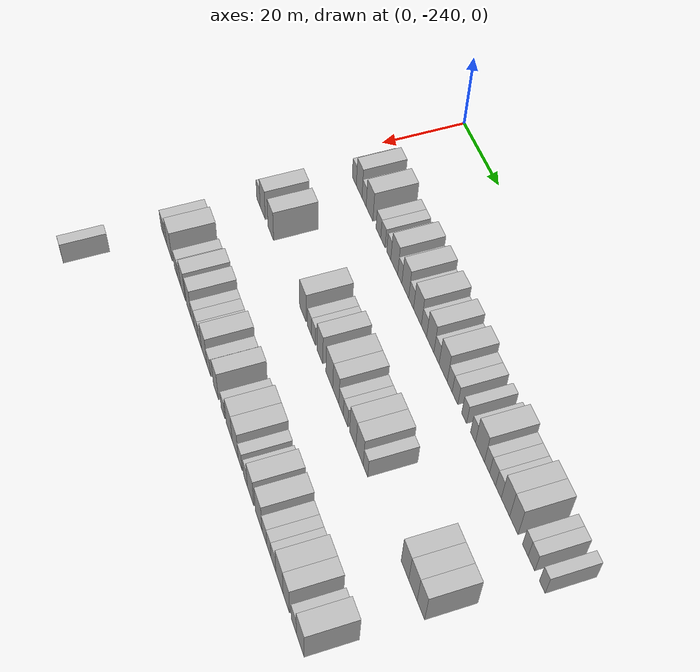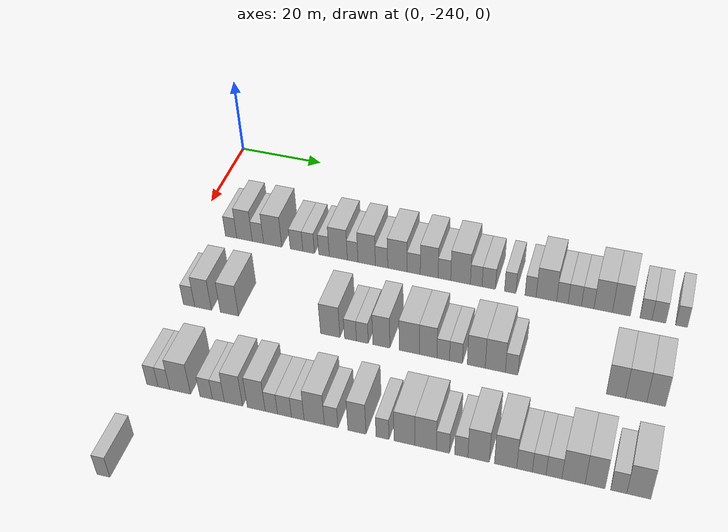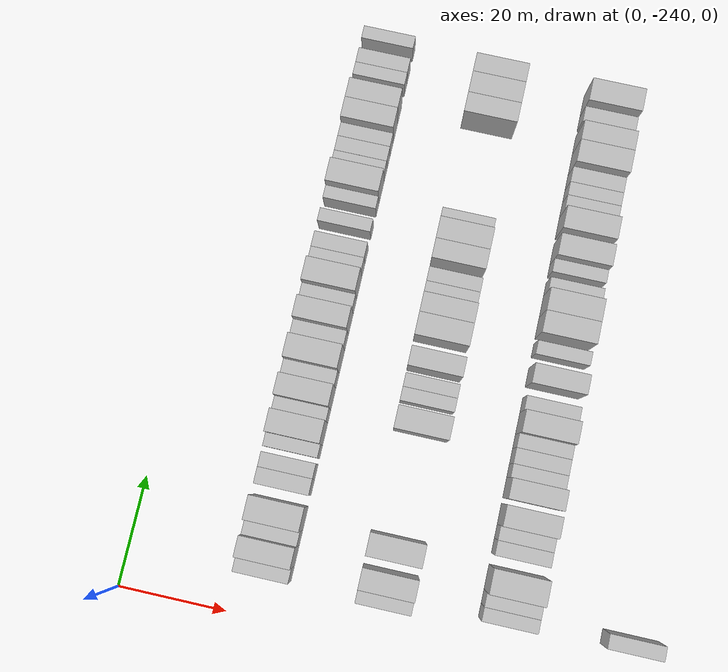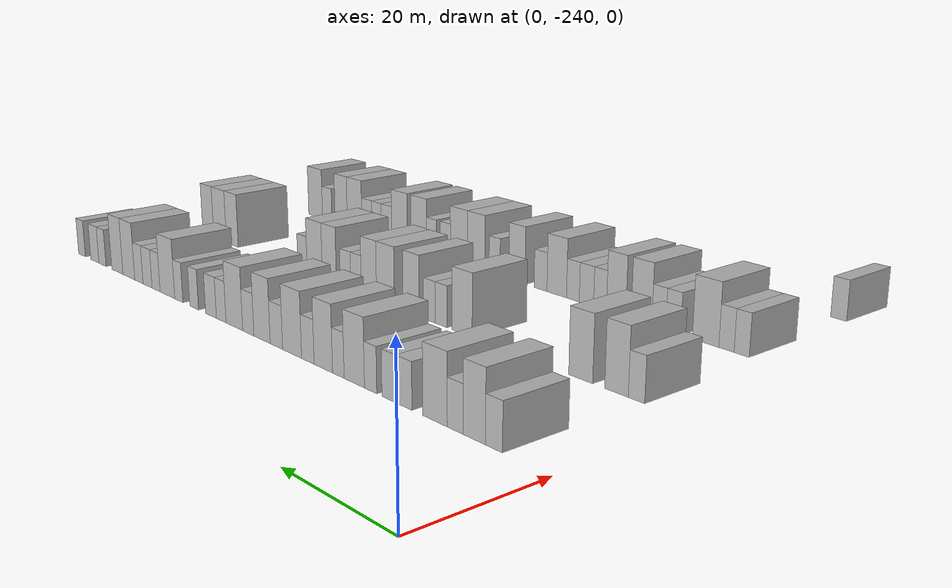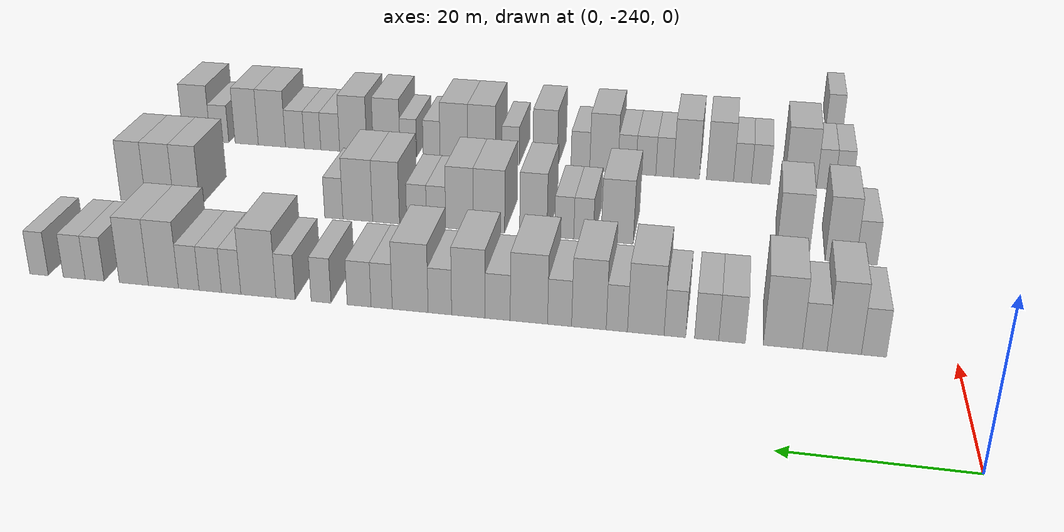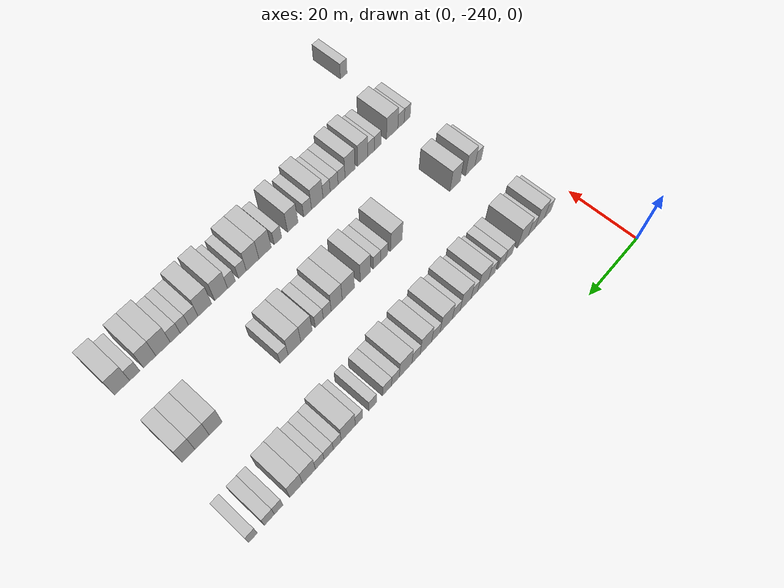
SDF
<sdf version="1.6">
 <world name="default">
  <model name="building_39">
   <static>1</static>
   <pose>25.0000 -230.9907 0 0.000000 0.000000 0.000000</pose>
   <link name="link">
    <pose>0 0 3.00 0 0 0</pose>
    <collision name="collision"><geometry><box><size>10.0000 2.7248 6.0000</size></box></geometry></collision>
    <visual name="visual">
     <cast_shadows>0</cast_shadows>
     <geometry><box><size>10.0000 2.7248 6.0000</size></box></geometry>
     <material>
      <script>
       <uri>model://HANNAS_wall/materials/scripts</uri>
       <uri>model://HANNAS_wall/materials/textures</uri>
       <name>vrc/HANNAS_wall</name>
      </script>
     </material>
    </visual>
   </link>
  </model>
  <model name="building_40">
   <static>1</static>
   <pose>25.0000 -227.7550 0 0.000000 0.000000 0.000000</pose>
   <link name="link">
    <pose>0 0 4.50 0 0 0</pose>
    <collision name="collision"><geometry><box><size>10.0000 3.7465 9.0000</size></box></geometry></collision>
    <visual name="visual">
     <cast_shadows>0</cast_shadows>
     <geometry><box><size>10.0000 3.7465 9.0000</size></box></geometry>
     <material>
      <script>
       <uri>model://HANNAS_wall/materials/scripts</uri>
       <uri>model://HANNAS_wall/materials/textures</uri>
       <name>vrc/HANNAS_wall</name>
      </script>
     </material>
    </visual>
   </link>
  </model>
  <model name="building_41">
   <static>1</static>
   <pose>25.0000 -224.5326 0 0.000000 0.000000 0.000000</pose>
   <link name="link">
    <pose>0 0 3.00 0 0 0</pose>
    <collision name="collision"><geometry><box><size>10.0000 2.6983 6.0000</size></box></geometry></collision>
    <visual name="visual">
     <cast_shadows>0</cast_shadows>
     <geometry><box><size>10.0000 2.6983 6.0000</size></box></geometry>
     <material>
      <script>
       <uri>model://HANNAS_wall/materials/scripts</uri>
       <uri>model://HANNAS_wall/materials/textures</uri>
       <name>vrc/HANNAS_wall</name>
      </script>
     </material>
    </visual>
   </link>
  </model>
  <model name="building_42">
   <static>1</static>
   <pose>25.0000 -221.0096 0 0.000000 0.000000 0.000000</pose>
   <link name="link">
    <pose>0 0 4.50 0 0 0</pose>
    <collision name="collision"><geometry><box><size>10.0000 4.3477 9.0000</size></box></geometry></collision>
    <visual name="visual">
     <cast_shadows>0</cast_shadows>
     <geometry><box><size>10.0000 4.3477 9.0000</size></box></geometry>
     <material>
      <script>
       <uri>model://HANNAS_wall/materials/scripts</uri>
       <uri>model://HANNAS_wall/materials/textures</uri>
       <name>vrc/HANNAS_wall</name>
      </script>
     </material>
    </visual>
   </link>
  </model>
  <model name="building_43">
   <static>1</static>
   <pose>25.0000 -215.3439 0 0.000000 0.000000 0.000000</pose>
   <link name="link">
    <pose>0 0 3.00 0 0 0</pose>
    <collision name="collision"><geometry><box><size>10.0000 2.9838 6.0000</size></box></geometry></collision>
    <visual name="visual">
     <cast_shadows>0</cast_shadows>
     <geometry><box><size>10.0000 2.9838 6.0000</size></box></geometry>
     <material>
      <script>
       <uri>model://HANNAS_wall/materials/scripts</uri>
       <uri>model://HANNAS_wall/materials/textures</uri>
       <name>vrc/HANNAS_wall</name>
      </script>
     </material>
    </visual>
   </link>
  </model>
  <model name="building_44">
   <static>1</static>
   <pose>25.0000 -212.4890 0 0.000000 0.000000 0.000000</pose>
   <link name="link">
    <pose>0 0 3.00 0 0 0</pose>
    <collision name="collision"><geometry><box><size>10.0000 2.7260 6.0000</size></box></geometry></collision>
    <visual name="visual">
     <cast_shadows>0</cast_shadows>
     <geometry><box><size>10.0000 2.7260 6.0000</size></box></geometry>
     <material>
      <script>
       <uri>model://HANNAS_wall/materials/scripts</uri>
       <uri>model://HANNAS_wall/materials/textures</uri>
       <name>vrc/HANNAS_wall</name>
      </script>
     </material>
    </visual>
   </link>
  </model>
  <model name="building_45">
   <static>1</static>
   <pose>25.0000 -208.8922 0 0.000000 0.000000 0.000000</pose>
   <link name="link">
    <pose>0 0 3.00 0 0 0</pose>
    <collision name="collision"><geometry><box><size>10.0000 2.4675 6.0000</size></box></geometry></collision>
    <visual name="visual">
     <cast_shadows>0</cast_shadows>
     <geometry><box><size>10.0000 2.4675 6.0000</size></box></geometry>
     <material>
      <script>
       <uri>model://HANNAS_wall/materials/scripts</uri>
       <uri>model://HANNAS_wall/materials/textures</uri>
       <name>vrc/HANNAS_wall</name>
      </script>
     </material>
    </visual>
   </link>
  </model>
  <model name="building_46">
   <static>1</static>
   <pose>25.0000 -205.5617 0 0.000000 0.000000 0.000000</pose>
   <link name="link">
    <pose>0 0 4.50 0 0 0</pose>
    <collision name="collision"><geometry><box><size>10.0000 4.1934 9.0000</size></box></geometry></collision>
    <visual name="visual">
     <cast_shadows>0</cast_shadows>
     <geometry><box><size>10.0000 4.1934 9.0000</size></box></geometry>
     <material>
      <script>
       <uri>model://HANNAS_wall/materials/scripts</uri>
       <uri>model://HANNAS_wall/materials/textures</uri>
       <name>vrc/HANNAS_wall</name>
      </script>
     </material>
    </visual>
   </link>
  </model>
  <model name="building_47">
   <static>1</static>
   <pose>25.0000 -202.2358 0 0.000000 0.000000 0.000000</pose>
   <link name="link">
    <pose>0 0 3.00 0 0 0</pose>
    <collision name="collision"><geometry><box><size>10.0000 2.4584 6.0000</size></box></geometry></collision>
    <visual name="visual">
     <cast_shadows>0</cast_shadows>
     <geometry><box><size>10.0000 2.4584 6.0000</size></box></geometry>
     <material>
      <script>
       <uri>model://HANNAS_wall/materials/scripts</uri>
       <uri>model://HANNAS_wall/materials/textures</uri>
       <name>vrc/HANNAS_wall</name>
      </script>
     </material>
    </visual>
   </link>
  </model>
  <model name="building_48">
   <static>1</static>
   <pose>25.0000 -198.9957 0 0.000000 0.000000 0.000000</pose>
   <link name="link">
    <pose>0 0 4.50 0 0 0</pose>
    <collision name="collision"><geometry><box><size>10.0000 4.0219 9.0000</size></box></geometry></collision>
    <visual name="visual">
     <cast_shadows>0</cast_shadows>
     <geometry><box><size>10.0000 4.0219 9.0000</size></box></geometry>
     <material>
      <script>
       <uri>model://HANNAS_wall/materials/scripts</uri>
       <uri>model://HANNAS_wall/materials/textures</uri>
       <name>vrc/HANNAS_wall</name>
      </script>
     </material>
    </visual>
   </link>
  </model>
  <model name="building_49">
   <static>1</static>
   <pose>25.0000 -195.5774 0 0.000000 0.000000 0.000000</pose>
   <link name="link">
    <pose>0 0 3.00 0 0 0</pose>
    <collision name="collision"><geometry><box><size>10.0000 2.8146 6.0000</size></box></geometry></collision>
    <visual name="visual">
     <cast_shadows>0</cast_shadows>
     <geometry><box><size>10.0000 2.8146 6.0000</size></box></geometry>
     <material>
      <script>
       <uri>model://HANNAS_wall/materials/scripts</uri>
       <uri>model://HANNAS_wall/materials/textures</uri>
       <name>vrc/HANNAS_wall</name>
      </script>
     </material>
    </visual>
   </link>
  </model>
  <model name="building_50">
   <static>1</static>
   <pose>25.0000 -191.9645 0 0.000000 0.000000 0.000000</pose>
   <link name="link">
    <pose>0 0 4.50 0 0 0</pose>
    <collision name="collision"><geometry><box><size>10.0000 4.4112 9.0000</size></box></geometry></collision>
    <visual name="visual">
     <cast_shadows>0</cast_shadows>
     <geometry><box><size>10.0000 4.4112 9.0000</size></box></geometry>
     <material>
      <script>
       <uri>model://HANNAS_wall/materials/scripts</uri>
       <uri>model://HANNAS_wall/materials/textures</uri>
       <name>vrc/HANNAS_wall</name>
      </script>
     </material>
    </visual>
   </link>
  </model>
  <model name="building_51">
   <static>1</static>
   <pose>25.0000 -188.2748 0 0.000000 0.000000 0.000000</pose>
   <link name="link">
    <pose>0 0 3.00 0 0 0</pose>
    <collision name="collision"><geometry><box><size>10.0000 2.9683 6.0000</size></box></geometry></collision>
    <visual name="visual">
     <cast_shadows>0</cast_shadows>
     <geometry><box><size>10.0000 2.9683 6.0000</size></box></geometry>
     <material>
      <script>
       <uri>model://HANNAS_wall/materials/scripts</uri>
       <uri>model://HANNAS_wall/materials/textures</uri>
       <name>vrc/HANNAS_wall</name>
      </script>
     </material>
    </visual>
   </link>
  </model>
  <model name="building_52">
   <static>1</static>
   <pose>25.0000 -184.7774 0 0.000000 0.000000 0.000000</pose>
   <link name="link">
    <pose>0 0 4.50 0 0 0</pose>
    <collision name="collision"><geometry><box><size>10.0000 4.0264 9.0000</size></box></geometry></collision>
    <visual name="visual">
     <cast_shadows>0</cast_shadows>
     <geometry><box><size>10.0000 4.0264 9.0000</size></box></geometry>
     <material>
      <script>
       <uri>model://HANNAS_wall/materials/scripts</uri>
       <uri>model://HANNAS_wall/materials/textures</uri>
       <name>vrc/HANNAS_wall</name>
      </script>
     </material>
    </visual>
   </link>
  </model>
  <model name="building_53">
   <static>1</static>
   <pose>25.0000 -181.3455 0 0.000000 0.000000 0.000000</pose>
   <link name="link">
    <pose>0 0 3.00 0 0 0</pose>
    <collision name="collision"><geometry><box><size>10.0000 2.8375 6.0000</size></box></geometry></collision>
    <visual name="visual">
     <cast_shadows>0</cast_shadows>
     <geometry><box><size>10.0000 2.8375 6.0000</size></box></geometry>
     <material>
      <script>
       <uri>model://HANNAS_wall/materials/scripts</uri>
       <uri>model://HANNAS_wall/materials/textures</uri>
       <name>vrc/HANNAS_wall</name>
      </script>
     </material>
    </visual>
   </link>
  </model>
  <model name="building_54">
   <static>1</static>
   <pose>25.0000 -177.7456 0 0.000000 0.000000 0.000000</pose>
   <link name="link">
    <pose>0 0 4.50 0 0 0</pose>
    <collision name="collision"><geometry><box><size>10.0000 4.3623 9.0000</size></box></geometry></collision>
    <visual name="visual">
     <cast_shadows>0</cast_shadows>
     <geometry><box><size>10.0000 4.3623 9.0000</size></box></geometry>
     <material>
      <script>
       <uri>model://HANNAS_wall/materials/scripts</uri>
       <uri>model://HANNAS_wall/materials/textures</uri>
       <name>vrc/HANNAS_wall</name>
      </script>
     </material>
    </visual>
   </link>
  </model>
  <model name="building_55">
   <static>1</static>
   <pose>25.0000 -174.2696 0 0.000000 0.000000 0.000000</pose>
   <link name="link">
    <pose>0 0 3.00 0 0 0</pose>
    <collision name="collision"><geometry><box><size>10.0000 2.5898 6.0000</size></box></geometry></collision>
    <visual name="visual">
     <cast_shadows>0</cast_shadows>
     <geometry><box><size>10.0000 2.5898 6.0000</size></box></geometry>
     <material>
      <script>
       <uri>model://HANNAS_wall/materials/scripts</uri>
       <uri>model://HANNAS_wall/materials/textures</uri>
       <name>vrc/HANNAS_wall</name>
      </script>
     </material>
    </visual>
   </link>
  </model>
  <model name="building_56">
   <static>1</static>
   <pose>25.0000 -171.4999 0 0.000000 0.000000 0.000000</pose>
   <link name="link">
    <pose>0 0 3.00 0 0 0</pose>
    <collision name="collision"><geometry><box><size>10.0000 2.9495 6.0000</size></box></geometry></collision>
    <visual name="visual">
     <cast_shadows>0</cast_shadows>
     <geometry><box><size>10.0000 2.9495 6.0000</size></box></geometry>
     <material>
      <script>
       <uri>model://HANNAS_wall/materials/scripts</uri>
       <uri>model://HANNAS_wall/materials/textures</uri>
       <name>vrc/HANNAS_wall</name>
      </script>
     </material>
    </visual>
   </link>
  </model>
  <model name="building_57">
   <static>1</static>
   <pose>25.0000 -166.7829 0 0.000000 0.000000 0.000000</pose>
   <link name="link">
    <pose>0 0 3.00 0 0 0</pose>
    <collision name="collision"><geometry><box><size>10.0000 2.4845 6.0000</size></box></geometry></collision>
    <visual name="visual">
     <cast_shadows>0</cast_shadows>
     <geometry><box><size>10.0000 2.4845 6.0000</size></box></geometry>
     <material>
      <script>
       <uri>model://HANNAS_wall/materials/scripts</uri>
       <uri>model://HANNAS_wall/materials/textures</uri>
       <name>vrc/HANNAS_wall</name>
      </script>
     </material>
    </visual>
   </link>
  </model>
  <model name="building_58">
   <static>1</static>
   <pose>25.0000 -162.3338 0 0.000000 0.000000 0.000000</pose>
   <link name="link">
    <pose>0 0 3.00 0 0 0</pose>
    <collision name="collision"><geometry><box><size>10.0000 2.4136 6.0000</size></box></geometry></collision>
    <visual name="visual">
     <cast_shadows>0</cast_shadows>
     <geometry><box><size>10.0000 2.4136 6.0000</size></box></geometry>
     <material>
      <script>
       <uri>model://HANNAS_wall/materials/scripts</uri>
       <uri>model://HANNAS_wall/materials/textures</uri>
       <name>vrc/HANNAS_wall</name>
      </script>
     </material>
    </visual>
   </link>
  </model>
  <model name="building_59">
   <static>1</static>
   <pose>25.0000 -158.9066 0 0.000000 0.000000 0.000000</pose>
   <link name="link">
    <pose>0 0 4.50 0 0 0</pose>
    <collision name="collision"><geometry><box><size>10.0000 4.4409 9.0000</size></box></geometry></collision>
    <visual name="visual">
     <cast_shadows>0</cast_shadows>
     <geometry><box><size>10.0000 4.4409 9.0000</size></box></geometry>
     <material>
      <script>
       <uri>model://HANNAS_wall/materials/scripts</uri>
       <uri>model://HANNAS_wall/materials/textures</uri>
       <name>vrc/HANNAS_wall</name>
      </script>
     </material>
    </visual>
   </link>
  </model>
  <model name="building_60">
   <static>1</static>
   <pose>25.0000 -155.4463 0 0.000000 0.000000 0.000000</pose>
   <link name="link">
    <pose>0 0 3.00 0 0 0</pose>
    <collision name="collision"><geometry><box><size>10.0000 2.4797 6.0000</size></box></geometry></collision>
    <visual name="visual">
     <cast_shadows>0</cast_shadows>
     <geometry><box><size>10.0000 2.4797 6.0000</size></box></geometry>
     <material>
      <script>
       <uri>model://HANNAS_wall/materials/scripts</uri>
       <uri>model://HANNAS_wall/materials/textures</uri>
       <name>vrc/HANNAS_wall</name>
      </script>
     </material>
    </visual>
   </link>
  </model>
  <model name="building_61">
   <static>1</static>
   <pose>25.0000 -152.7761 0 0.000000 0.000000 0.000000</pose>
   <link name="link">
    <pose>0 0 3.00 0 0 0</pose>
    <collision name="collision"><geometry><box><size>10.0000 2.8606 6.0000</size></box></geometry></collision>
    <visual name="visual">
     <cast_shadows>0</cast_shadows>
     <geometry><box><size>10.0000 2.8606 6.0000</size></box></geometry>
     <material>
      <script>
       <uri>model://HANNAS_wall/materials/scripts</uri>
       <uri>model://HANNAS_wall/materials/textures</uri>
       <name>vrc/HANNAS_wall</name>
      </script>
     </material>
    </visual>
   </link>
  </model>
  <model name="building_62">
   <static>1</static>
   <pose>25.0000 -150.0141 0 0.000000 0.000000 0.000000</pose>
   <link name="link">
    <pose>0 0 3.00 0 0 0</pose>
    <collision name="collision"><geometry><box><size>10.0000 2.6635 6.0000</size></box></geometry></collision>
    <visual name="visual">
     <cast_shadows>0</cast_shadows>
     <geometry><box><size>10.0000 2.6635 6.0000</size></box></geometry>
     <material>
      <script>
       <uri>model://HANNAS_wall/materials/scripts</uri>
       <uri>model://HANNAS_wall/materials/textures</uri>
       <name>vrc/HANNAS_wall</name>
      </script>
     </material>
    </visual>
   </link>
  </model>
  <model name="building_63">
   <static>1</static>
   <pose>25.0000 -146.7242 0 0.000000 0.000000 0.000000</pose>
   <link name="link">
    <pose>0 0 4.50 0 0 0</pose>
    <collision name="collision"><geometry><box><size>10.0000 3.9162 9.0000</size></box></geometry></collision>
    <visual name="visual">
     <cast_shadows>0</cast_shadows>
     <geometry><box><size>10.0000 3.9162 9.0000</size></box></geometry>
     <material>
      <script>
       <uri>model://HANNAS_wall/materials/scripts</uri>
       <uri>model://HANNAS_wall/materials/textures</uri>
       <name>vrc/HANNAS_wall</name>
      </script>
     </material>
    </visual>
   </link>
  </model>
  <model name="building_64">
   <static>1</static>
   <pose>25.0000 -142.8677 0 0.000000 0.000000 0.000000</pose>
   <link name="link">
    <pose>0 0 4.50 0 0 0</pose>
    <collision name="collision"><geometry><box><size>10.0000 3.7969 9.0000</size></box></geometry></collision>
    <visual name="visual">
     <cast_shadows>0</cast_shadows>
     <geometry><box><size>10.0000 3.7969 9.0000</size></box></geometry>
     <material>
      <script>
       <uri>model://HANNAS_wall/materials/scripts</uri>
       <uri>model://HANNAS_wall/materials/textures</uri>
       <name>vrc/HANNAS_wall</name>
      </script>
     </material>
    </visual>
   </link>
  </model>
  <model name="building_65">
   <static>1</static>
   <pose>25.0000 -137.7147 0 0.000000 0.000000 0.000000</pose>
   <link name="link">
    <pose>0 0 3.00 0 0 0</pose>
    <collision name="collision"><geometry><box><size>10.0000 2.5091 6.0000</size></box></geometry></collision>
    <visual name="visual">
     <cast_shadows>0</cast_shadows>
     <geometry><box><size>10.0000 2.5091 6.0000</size></box></geometry>
     <material>
      <script>
       <uri>model://HANNAS_wall/materials/scripts</uri>
       <uri>model://HANNAS_wall/materials/textures</uri>
       <name>vrc/HANNAS_wall</name>
      </script>
     </material>
    </visual>
   </link>
  </model>
  <model name="building_66">
   <static>1</static>
   <pose>25.0000 -135.0044 0 0.000000 0.000000 0.000000</pose>
   <link name="link">
    <pose>0 0 3.00 0 0 0</pose>
    <collision name="collision"><geometry><box><size>10.0000 2.9115 6.0000</size></box></geometry></collision>
    <visual name="visual">
     <cast_shadows>0</cast_shadows>
     <geometry><box><size>10.0000 2.9115 6.0000</size></box></geometry>
     <material>
      <script>
       <uri>model://HANNAS_wall/materials/scripts</uri>
       <uri>model://HANNAS_wall/materials/textures</uri>
       <name>vrc/HANNAS_wall</name>
      </script>
     </material>
    </visual>
   </link>
  </model>
  <model name="building_67">
   <static>1</static>
   <pose>25.0000 -130.3098 0 0.000000 0.000000 0.000000</pose>
   <link name="link">
    <pose>0 0 3.00 0 0 0</pose>
    <collision name="collision"><geometry><box><size>10.0000 2.4779 6.0000</size></box></geometry></collision>
    <visual name="visual">
     <cast_shadows>0</cast_shadows>
     <geometry><box><size>10.0000 2.4779 6.0000</size></box></geometry>
     <material>
      <script>
       <uri>model://HANNAS_wall/materials/scripts</uri>
       <uri>model://HANNAS_wall/materials/textures</uri>
       <name>vrc/HANNAS_wall</name>
      </script>
     </material>
    </visual>
   </link>
  </model>
  <model name="building_217">
   <static>1</static>
   <pose>47.0000 -231.5936 0 0.000000 0.000000 0.000000</pose>
   <link name="link">
    <pose>0 0 3.00 0 0 0</pose>
    <collision name="collision"><geometry><box><size>10.0000 2.5942 6.0000</size></box></geometry></collision>
    <visual name="visual">
     <cast_shadows>0</cast_shadows>
     <geometry><box><size>10.0000 2.5942 6.0000</size></box></geometry>
     <material>
      <script>
       <uri>model://HANNAS_wall/materials/scripts</uri>
       <uri>model://HANNAS_wall/materials/textures</uri>
       <name>vrc/HANNAS_wall</name>
      </script>
     </material>
    </visual>
   </link>
  </model>
  <model name="building_218">
   <static>1</static>
   <pose>47.0000 -228.3871 0 0.000000 0.000000 0.000000</pose>
   <link name="link">
    <pose>0 0 4.50 0 0 0</pose>
    <collision name="collision"><geometry><box><size>10.0000 3.8187 9.0000</size></box></geometry></collision>
    <visual name="visual">
     <cast_shadows>0</cast_shadows>
     <geometry><box><size>10.0000 3.8187 9.0000</size></box></geometry>
     <material>
      <script>
       <uri>model://HANNAS_wall/materials/scripts</uri>
       <uri>model://HANNAS_wall/materials/textures</uri>
       <name>vrc/HANNAS_wall</name>
      </script>
     </material>
    </visual>
   </link>
  </model>
  <model name="building_219">
   <static>1</static>
   <pose>47.0000 -222.4246 0 0.000000 0.000000 0.000000</pose>
   <link name="link">
    <pose>0 0 4.50 0 0 0</pose>
    <collision name="collision"><geometry><box><size>10.0000 4.1064 9.0000</size></box></geometry></collision>
    <visual name="visual">
     <cast_shadows>0</cast_shadows>
     <geometry><box><size>10.0000 4.1064 9.0000</size></box></geometry>
     <material>
      <script>
       <uri>model://HANNAS_wall/materials/scripts</uri>
       <uri>model://HANNAS_wall/materials/textures</uri>
       <name>vrc/HANNAS_wall</name>
      </script>
     </material>
    </visual>
   </link>
  </model>
  <model name="building_220">
   <static>1</static>
   <pose>47.0000 -200.0445 0 0.000000 0.000000 0.000000</pose>
   <link name="link">
    <pose>0 0 4.50 0 0 0</pose>
    <collision name="collision"><geometry><box><size>10.0000 4.2179 9.0000</size></box></geometry></collision>
    <visual name="visual">
     <cast_shadows>0</cast_shadows>
     <geometry><box><size>10.0000 4.2179 9.0000</size></box></geometry>
     <material>
      <script>
       <uri>model://HANNAS_wall/materials/scripts</uri>
       <uri>model://HANNAS_wall/materials/textures</uri>
       <name>vrc/HANNAS_wall</name>
      </script>
     </material>
    </visual>
   </link>
  </model>
  <model name="building_221">
   <static>1</static>
   <pose>47.0000 -195.6510 0 0.000000 0.000000 0.000000</pose>
   <link name="link">
    <pose>0 0 3.00 0 0 0</pose>
    <collision name="collision"><geometry><box><size>10.0000 2.5692 6.0000</size></box></geometry></collision>
    <visual name="visual">
     <cast_shadows>0</cast_shadows>
     <geometry><box><size>10.0000 2.5692 6.0000</size></box></geometry>
     <material>
      <script>
       <uri>model://HANNAS_wall/materials/scripts</uri>
       <uri>model://HANNAS_wall/materials/textures</uri>
       <name>vrc/HANNAS_wall</name>
      </script>
     </material>
    </visual>
   </link>
  </model>
  <model name="building_222">
   <static>1</static>
   <pose>47.0000 -193.0921 0 0.000000 0.000000 0.000000</pose>
   <link name="link">
    <pose>0 0 3.00 0 0 0</pose>
    <collision name="collision"><geometry><box><size>10.0000 2.5485 6.0000</size></box></geometry></collision>
    <visual name="visual">
     <cast_shadows>0</cast_shadows>
     <geometry><box><size>10.0000 2.5485 6.0000</size></box></geometry>
     <material>
      <script>
       <uri>model://HANNAS_wall/materials/scripts</uri>
       <uri>model://HANNAS_wall/materials/textures</uri>
       <name>vrc/HANNAS_wall</name>
      </script>
     </material>
    </visual>
   </link>
  </model>
  <model name="building_223">
   <static>1</static>
   <pose>47.0000 -189.0012 0 0.000000 0.000000 0.000000</pose>
   <link name="link">
    <pose>0 0 4.50 0 0 0</pose>
    <collision name="collision"><geometry><box><size>10.0000 3.6333 9.0000</size></box></geometry></collision>
    <visual name="visual">
     <cast_shadows>0</cast_shadows>
     <geometry><box><size>10.0000 3.6333 9.0000</size></box></geometry>
     <material>
      <script>
       <uri>model://HANNAS_wall/materials/scripts</uri>
       <uri>model://HANNAS_wall/materials/textures</uri>
       <name>vrc/HANNAS_wall</name>
      </script>
     </material>
    </visual>
   </link>
  </model>
  <model name="building_224">
   <static>1</static>
   <pose>47.0000 -183.0640 0 0.000000 0.000000 0.000000</pose>
   <link name="link">
    <pose>0 0 4.50 0 0 0</pose>
    <collision name="collision"><geometry><box><size>10.0000 4.2411 9.0000</size></box></geometry></collision>
    <visual name="visual">
     <cast_shadows>0</cast_shadows>
     <geometry><box><size>10.0000 4.2411 9.0000</size></box></geometry>
     <material>
      <script>
       <uri>model://HANNAS_wall/materials/scripts</uri>
       <uri>model://HANNAS_wall/materials/textures</uri>
       <name>vrc/HANNAS_wall</name>
      </script>
     </material>
    </visual>
   </link>
  </model>
  <model name="building_225">
   <static>1</static>
   <pose>47.0000 -179.0839 0 0.000000 0.000000 0.000000</pose>
   <link name="link">
    <pose>0 0 4.50 0 0 0</pose>
    <collision name="collision"><geometry><box><size>10.0000 3.7191 9.0000</size></box></geometry></collision>
    <visual name="visual">
     <cast_shadows>0</cast_shadows>
     <geometry><box><size>10.0000 3.7191 9.0000</size></box></geometry>
     <material>
      <script>
       <uri>model://HANNAS_wall/materials/scripts</uri>
       <uri>model://HANNAS_wall/materials/textures</uri>
       <name>vrc/HANNAS_wall</name>
      </script>
     </material>
    </visual>
   </link>
  </model>
  <model name="building_226">
   <static>1</static>
   <pose>47.0000 -175.9147 0 0.000000 0.000000 0.000000</pose>
   <link name="link">
    <pose>0 0 3.00 0 0 0</pose>
    <collision name="collision"><geometry><box><size>10.0000 2.6194 6.0000</size></box></geometry></collision>
    <visual name="visual">
     <cast_shadows>0</cast_shadows>
     <geometry><box><size>10.0000 2.6194 6.0000</size></box></geometry>
     <material>
      <script>
       <uri>model://HANNAS_wall/materials/scripts</uri>
       <uri>model://HANNAS_wall/materials/textures</uri>
       <name>vrc/HANNAS_wall</name>
      </script>
     </material>
    </visual>
   </link>
  </model>
  <model name="building_227">
   <static>1</static>
   <pose>47.0000 -173.2536 0 0.000000 0.000000 0.000000</pose>
   <link name="link">
    <pose>0 0 3.00 0 0 0</pose>
    <collision name="collision"><geometry><box><size>10.0000 2.7028 6.0000</size></box></geometry></collision>
    <visual name="visual">
     <cast_shadows>0</cast_shadows>
     <geometry><box><size>10.0000 2.7028 6.0000</size></box></geometry>
     <material>
      <script>
       <uri>model://HANNAS_wall/materials/scripts</uri>
       <uri>model://HANNAS_wall/materials/textures</uri>
       <name>vrc/HANNAS_wall</name>
      </script>
     </material>
    </visual>
   </link>
  </model>
  <model name="building_228">
   <static>1</static>
   <pose>47.0000 -169.0437 0 0.000000 0.000000 0.000000</pose>
   <link name="link">
    <pose>0 0 4.50 0 0 0</pose>
    <collision name="collision"><geometry><box><size>10.0000 3.7170 9.0000</size></box></geometry></collision>
    <visual name="visual">
     <cast_shadows>0</cast_shadows>
     <geometry><box><size>10.0000 3.7170 9.0000</size></box></geometry>
     <material>
      <script>
       <uri>model://HANNAS_wall/materials/scripts</uri>
       <uri>model://HANNAS_wall/materials/textures</uri>
       <name>vrc/HANNAS_wall</name>
      </script>
     </material>
    </visual>
   </link>
  </model>
  <model name="building_229">
   <static>1</static>
   <pose>47.0000 -165.1216 0 0.000000 0.000000 0.000000</pose>
   <link name="link">
    <pose>0 0 4.50 0 0 0</pose>
    <collision name="collision"><geometry><box><size>10.0000 4.1272 9.0000</size></box></geometry></collision>
    <visual name="visual">
     <cast_shadows>0</cast_shadows>
     <geometry><box><size>10.0000 4.1272 9.0000</size></box></geometry>
     <material>
      <script>
       <uri>model://HANNAS_wall/materials/scripts</uri>
       <uri>model://HANNAS_wall/materials/textures</uri>
       <name>vrc/HANNAS_wall</name>
      </script>
     </material>
    </visual>
   </link>
  </model>
  <model name="building_230">
   <static>1</static>
   <pose>47.0000 -161.7796 0 0.000000 0.000000 0.000000</pose>
   <link name="link">
    <pose>0 0 3.00 0 0 0</pose>
    <collision name="collision"><geometry><box><size>10.0000 2.5568 6.0000</size></box></geometry></collision>
    <visual name="visual">
     <cast_shadows>0</cast_shadows>
     <geometry><box><size>10.0000 2.5568 6.0000</size></box></geometry>
     <material>
      <script>
       <uri>model://HANNAS_wall/materials/scripts</uri>
       <uri>model://HANNAS_wall/materials/textures</uri>
       <name>vrc/HANNAS_wall</name>
      </script>
     </material>
    </visual>
   </link>
  </model>
  <model name="building_231">
   <static>1</static>
   <pose>47.0000 -140.7854 0 0.000000 0.000000 0.000000</pose>
   <link name="link">
    <pose>0 0 4.50 0 0 0</pose>
    <collision name="collision"><geometry><box><size>10.0000 3.8105 9.0000</size></box></geometry></collision>
    <visual name="visual">
     <cast_shadows>0</cast_shadows>
     <geometry><box><size>10.0000 3.8105 9.0000</size></box></geometry>
     <material>
      <script>
       <uri>model://HANNAS_wall/materials/scripts</uri>
       <uri>model://HANNAS_wall/materials/textures</uri>
       <name>vrc/HANNAS_wall</name>
      </script>
     </material>
    </visual>
   </link>
  </model>
  <model name="building_232">
   <static>1</static>
   <pose>47.0000 -136.8067 0 0.000000 0.000000 0.000000</pose>
   <link name="link">
    <pose>0 0 4.50 0 0 0</pose>
    <collision name="collision"><geometry><box><size>10.0000 4.1468 9.0000</size></box></geometry></collision>
    <visual name="visual">
     <cast_shadows>0</cast_shadows>
     <geometry><box><size>10.0000 4.1468 9.0000</size></box></geometry>
     <material>
      <script>
       <uri>model://HANNAS_wall/materials/scripts</uri>
       <uri>model://HANNAS_wall/materials/textures</uri>
       <name>vrc/HANNAS_wall</name>
      </script>
     </material>
    </visual>
   </link>
  </model>
  <model name="building_233">
   <static>1</static>
   <pose>47.0000 -132.8982 0 0.000000 0.000000 0.000000</pose>
   <link name="link">
    <pose>0 0 4.50 0 0 0</pose>
    <collision name="collision"><geometry><box><size>10.0000 3.6703 9.0000</size></box></geometry></collision>
    <visual name="visual">
     <cast_shadows>0</cast_shadows>
     <geometry><box><size>10.0000 3.6703 9.0000</size></box></geometry>
     <material>
      <script>
       <uri>model://HANNAS_wall/materials/scripts</uri>
       <uri>model://HANNAS_wall/materials/textures</uri>
       <name>vrc/HANNAS_wall</name>
      </script>
     </material>
    </visual>
   </link>
  </model>
  <model name="building_398">
   <static>1</static>
   <pose>69.0000 -229.8285 0 0.000000 0.000000 0.000000</pose>
   <link name="link">
    <pose>0 0 3.00 0 0 0</pose>
    <collision name="collision"><geometry><box><size>10.0000 2.4326 6.0000</size></box></geometry></collision>
    <visual name="visual">
     <cast_shadows>0</cast_shadows>
     <geometry><box><size>10.0000 2.4326 6.0000</size></box></geometry>
     <material>
      <script>
       <uri>model://HANNAS_wall/materials/scripts</uri>
       <uri>model://HANNAS_wall/materials/textures</uri>
       <name>vrc/HANNAS_wall</name>
      </script>
     </material>
    </visual>
   </link>
  </model>
  <model name="building_399">
   <static>1</static>
   <pose>69.0000 -227.3688 0 0.000000 0.000000 0.000000</pose>
   <link name="link">
    <pose>0 0 3.00 0 0 0</pose>
    <collision name="collision"><geometry><box><size>10.0000 2.4868 6.0000</size></box></geometry></collision>
    <visual name="visual">
     <cast_shadows>0</cast_shadows>
     <geometry><box><size>10.0000 2.4868 6.0000</size></box></geometry>
     <material>
      <script>
       <uri>model://HANNAS_wall/materials/scripts</uri>
       <uri>model://HANNAS_wall/materials/textures</uri>
       <name>vrc/HANNAS_wall</name>
      </script>
     </material>
    </visual>
   </link>
  </model>
  <model name="building_400">
   <static>1</static>
   <pose>69.0000 -223.8907 0 0.000000 0.000000 0.000000</pose>
   <link name="link">
    <pose>0 0 4.50 0 0 0</pose>
    <collision name="collision"><geometry><box><size>10.0000 4.4694 9.0000</size></box></geometry></collision>
    <visual name="visual">
     <cast_shadows>0</cast_shadows>
     <geometry><box><size>10.0000 4.4694 9.0000</size></box></geometry>
     <material>
      <script>
       <uri>model://HANNAS_wall/materials/scripts</uri>
       <uri>model://HANNAS_wall/materials/textures</uri>
       <name>vrc/HANNAS_wall</name>
      </script>
     </material>
    </visual>
   </link>
  </model>
  <model name="building_401">
   <static>1</static>
   <pose>69.0000 -218.3330 0 0.000000 0.000000 0.000000</pose>
   <link name="link">
    <pose>0 0 3.00 0 0 0</pose>
    <collision name="collision"><geometry><box><size>10.0000 2.6459 6.0000</size></box></geometry></collision>
    <visual name="visual">
     <cast_shadows>0</cast_shadows>
     <geometry><box><size>10.0000 2.6459 6.0000</size></box></geometry>
     <material>
      <script>
       <uri>model://HANNAS_wall/materials/scripts</uri>
       <uri>model://HANNAS_wall/materials/textures</uri>
       <name>vrc/HANNAS_wall</name>
      </script>
     </material>
    </visual>
   </link>
  </model>
  <model name="building_402">
   <static>1</static>
   <pose>69.0000 -215.7503 0 0.000000 0.000000 0.000000</pose>
   <link name="link">
    <pose>0 0 3.00 0 0 0</pose>
    <collision name="collision"><geometry><box><size>10.0000 2.5196 6.0000</size></box></geometry></collision>
    <visual name="visual">
     <cast_shadows>0</cast_shadows>
     <geometry><box><size>10.0000 2.5196 6.0000</size></box></geometry>
     <material>
      <script>
       <uri>model://HANNAS_wall/materials/scripts</uri>
       <uri>model://HANNAS_wall/materials/textures</uri>
       <name>vrc/HANNAS_wall</name>
      </script>
     </material>
    </visual>
   </link>
  </model>
  <model name="building_403">
   <static>1</static>
   <pose>69.0000 -212.5819 0 0.000000 0.000000 0.000000</pose>
   <link name="link">
    <pose>0 0 4.50 0 0 0</pose>
    <collision name="collision"><geometry><box><size>10.0000 3.8172 9.0000</size></box></geometry></collision>
    <visual name="visual">
     <cast_shadows>0</cast_shadows>
     <geometry><box><size>10.0000 3.8172 9.0000</size></box></geometry>
     <material>
      <script>
       <uri>model://HANNAS_wall/materials/scripts</uri>
       <uri>model://HANNAS_wall/materials/textures</uri>
       <name>vrc/HANNAS_wall</name>
      </script>
     </material>
    </visual>
   </link>
  </model>
  <model name="building_404">
   <static>1</static>
   <pose>69.0000 -207.8206 0 0.000000 0.000000 0.000000</pose>
   <link name="link">
    <pose>0 0 4.50 0 0 0</pose>
    <collision name="collision"><geometry><box><size>10.0000 3.7055 9.0000</size></box></geometry></collision>
    <visual name="visual">
     <cast_shadows>0</cast_shadows>
     <geometry><box><size>10.0000 3.7055 9.0000</size></box></geometry>
     <material>
      <script>
       <uri>model://HANNAS_wall/materials/scripts</uri>
       <uri>model://HANNAS_wall/materials/textures</uri>
       <name>vrc/HANNAS_wall</name>
      </script>
     </material>
    </visual>
   </link>
  </model>
  <model name="building_405">
   <static>1</static>
   <pose>69.0000 -204.7001 0 0.000000 0.000000 0.000000</pose>
   <link name="link">
    <pose>0 0 3.00 0 0 0</pose>
    <collision name="collision"><geometry><box><size>10.0000 2.5355 6.0000</size></box></geometry></collision>
    <visual name="visual">
     <cast_shadows>0</cast_shadows>
     <geometry><box><size>10.0000 2.5355 6.0000</size></box></geometry>
     <material>
      <script>
       <uri>model://HANNAS_wall/materials/scripts</uri>
       <uri>model://HANNAS_wall/materials/textures</uri>
       <name>vrc/HANNAS_wall</name>
      </script>
     </material>
    </visual>
   </link>
  </model>
  <model name="building_406">
   <static>1</static>
   <pose>69.0000 -201.9912 0 0.000000 0.000000 0.000000</pose>
   <link name="link">
    <pose>0 0 3.00 0 0 0</pose>
    <collision name="collision"><geometry><box><size>10.0000 2.8823 6.0000</size></box></geometry></collision>
    <visual name="visual">
     <cast_shadows>0</cast_shadows>
     <geometry><box><size>10.0000 2.8823 6.0000</size></box></geometry>
     <material>
      <script>
       <uri>model://HANNAS_wall/materials/scripts</uri>
       <uri>model://HANNAS_wall/materials/textures</uri>
       <name>vrc/HANNAS_wall</name>
      </script>
     </material>
    </visual>
   </link>
  </model>
  <model name="building_407">
   <static>1</static>
   <pose>69.0000 -199.2514 0 0.000000 0.000000 0.000000</pose>
   <link name="link">
    <pose>0 0 3.00 0 0 0</pose>
    <collision name="collision"><geometry><box><size>10.0000 2.5974 6.0000</size></box></geometry></collision>
    <visual name="visual">
     <cast_shadows>0</cast_shadows>
     <geometry><box><size>10.0000 2.5974 6.0000</size></box></geometry>
     <material>
      <script>
       <uri>model://HANNAS_wall/materials/scripts</uri>
       <uri>model://HANNAS_wall/materials/textures</uri>
       <name>vrc/HANNAS_wall</name>
      </script>
     </material>
    </visual>
   </link>
  </model>
  <model name="building_408">
   <static>1</static>
   <pose>69.0000 -195.8962 0 0.000000 0.000000 0.000000</pose>
   <link name="link">
    <pose>0 0 4.50 0 0 0</pose>
    <collision name="collision"><geometry><box><size>10.0000 4.1129 9.0000</size></box></geometry></collision>
    <visual name="visual">
     <cast_shadows>0</cast_shadows>
     <geometry><box><size>10.0000 4.1129 9.0000</size></box></geometry>
     <material>
      <script>
       <uri>model://HANNAS_wall/materials/scripts</uri>
       <uri>model://HANNAS_wall/materials/textures</uri>
       <name>vrc/HANNAS_wall</name>
      </script>
     </material>
    </visual>
   </link>
  </model>
  <model name="building_409">
   <static>1</static>
   <pose>69.0000 -192.4598 0 0.000000 0.000000 0.000000</pose>
   <link name="link">
    <pose>0 0 3.00 0 0 0</pose>
    <collision name="collision"><geometry><box><size>10.0000 2.7600 6.0000</size></box></geometry></collision>
    <visual name="visual">
     <cast_shadows>0</cast_shadows>
     <geometry><box><size>10.0000 2.7600 6.0000</size></box></geometry>
     <material>
      <script>
       <uri>model://HANNAS_wall/materials/scripts</uri>
       <uri>model://HANNAS_wall/materials/textures</uri>
       <name>vrc/HANNAS_wall</name>
      </script>
     </material>
    </visual>
   </link>
  </model>
  <model name="building_410">
   <static>1</static>
   <pose>69.0000 -187.2626 0 0.000000 0.000000 0.000000</pose>
   <link name="link">
    <pose>0 0 4.50 0 0 0</pose>
    <collision name="collision"><geometry><box><size>10.0000 3.6344 9.0000</size></box></geometry></collision>
    <visual name="visual">
     <cast_shadows>0</cast_shadows>
     <geometry><box><size>10.0000 3.6344 9.0000</size></box></geometry>
     <material>
      <script>
       <uri>model://HANNAS_wall/materials/scripts</uri>
       <uri>model://HANNAS_wall/materials/textures</uri>
       <name>vrc/HANNAS_wall</name>
      </script>
     </material>
    </visual>
   </link>
  </model>
  <model name="building_411">
   <static>1</static>
   <pose>69.0000 -182.1572 0 0.000000 0.000000 0.000000</pose>
   <link name="link">
    <pose>0 0 3.00 0 0 0</pose>
    <collision name="collision"><geometry><box><size>10.0000 2.5762 6.0000</size></box></geometry></collision>
    <visual name="visual">
     <cast_shadows>0</cast_shadows>
     <geometry><box><size>10.0000 2.5762 6.0000</size></box></geometry>
     <material>
      <script>
       <uri>model://HANNAS_wall/materials/scripts</uri>
       <uri>model://HANNAS_wall/materials/textures</uri>
       <name>vrc/HANNAS_wall</name>
      </script>
     </material>
    </visual>
   </link>
  </model>
  <model name="building_412">
   <static>1</static>
   <pose>69.0000 -177.8051 0 0.000000 0.000000 0.000000</pose>
   <link name="link">
    <pose>0 0 4.50 0 0 0</pose>
    <collision name="collision"><geometry><box><size>10.0000 4.1281 9.0000</size></box></geometry></collision>
    <visual name="visual">
     <cast_shadows>0</cast_shadows>
     <geometry><box><size>10.0000 4.1281 9.0000</size></box></geometry>
     <material>
      <script>
       <uri>model://HANNAS_wall/materials/scripts</uri>
       <uri>model://HANNAS_wall/materials/textures</uri>
       <name>vrc/HANNAS_wall</name>
      </script>
     </material>
    </visual>
   </link>
  </model>
  <model name="building_413">
   <static>1</static>
   <pose>69.0000 -173.6441 0 0.000000 0.000000 0.000000</pose>
   <link name="link">
    <pose>0 0 4.50 0 0 0</pose>
    <collision name="collision"><geometry><box><size>10.0000 4.1939 9.0000</size></box></geometry></collision>
    <visual name="visual">
     <cast_shadows>0</cast_shadows>
     <geometry><box><size>10.0000 4.1939 9.0000</size></box></geometry>
     <material>
      <script>
       <uri>model://HANNAS_wall/materials/scripts</uri>
       <uri>model://HANNAS_wall/materials/textures</uri>
       <name>vrc/HANNAS_wall</name>
      </script>
     </material>
    </visual>
   </link>
  </model>
  <model name="building_414">
   <static>1</static>
   <pose>69.0000 -170.2654 0 0.000000 0.000000 0.000000</pose>
   <link name="link">
    <pose>0 0 3.00 0 0 0</pose>
    <collision name="collision"><geometry><box><size>10.0000 2.5634 6.0000</size></box></geometry></collision>
    <visual name="visual">
     <cast_shadows>0</cast_shadows>
     <geometry><box><size>10.0000 2.5634 6.0000</size></box></geometry>
     <material>
      <script>
       <uri>model://HANNAS_wall/materials/scripts</uri>
       <uri>model://HANNAS_wall/materials/textures</uri>
       <name>vrc/HANNAS_wall</name>
      </script>
     </material>
    </visual>
   </link>
  </model>
  <model name="building_415">
   <static>1</static>
   <pose>69.0000 -166.7122 0 0.000000 0.000000 0.000000</pose>
   <link name="link">
    <pose>0 0 3.00 0 0 0</pose>
    <collision name="collision"><geometry><box><size>10.0000 2.5432 6.0000</size></box></geometry></collision>
    <visual name="visual">
     <cast_shadows>0</cast_shadows>
     <geometry><box><size>10.0000 2.5432 6.0000</size></box></geometry>
     <material>
      <script>
       <uri>model://HANNAS_wall/materials/scripts</uri>
       <uri>model://HANNAS_wall/materials/textures</uri>
       <name>vrc/HANNAS_wall</name>
      </script>
     </material>
    </visual>
   </link>
  </model>
  <model name="building_416">
   <static>1</static>
   <pose>69.0000 -163.3870 0 0.000000 0.000000 0.000000</pose>
   <link name="link">
    <pose>0 0 4.50 0 0 0</pose>
    <collision name="collision"><geometry><box><size>10.0000 4.1071 9.0000</size></box></geometry></collision>
    <visual name="visual">
     <cast_shadows>0</cast_shadows>
     <geometry><box><size>10.0000 4.1071 9.0000</size></box></geometry>
     <material>
      <script>
       <uri>model://HANNAS_wall/materials/scripts</uri>
       <uri>model://HANNAS_wall/materials/textures</uri>
       <name>vrc/HANNAS_wall</name>
      </script>
     </material>
    </visual>
   </link>
  </model>
  <model name="building_417">
   <static>1</static>
   <pose>69.0000 -158.2122 0 0.000000 0.000000 0.000000</pose>
   <link name="link">
    <pose>0 0 4.50 0 0 0</pose>
    <collision name="collision"><geometry><box><size>10.0000 4.2424 9.0000</size></box></geometry></collision>
    <visual name="visual">
     <cast_shadows>0</cast_shadows>
     <geometry><box><size>10.0000 4.2424 9.0000</size></box></geometry>
     <material>
      <script>
       <uri>model://HANNAS_wall/materials/scripts</uri>
       <uri>model://HANNAS_wall/materials/textures</uri>
       <name>vrc/HANNAS_wall</name>
      </script>
     </material>
    </visual>
   </link>
  </model>
  <model name="building_418">
   <static>1</static>
   <pose>69.0000 -154.6145 0 0.000000 0.000000 0.000000</pose>
   <link name="link">
    <pose>0 0 3.00 0 0 0</pose>
    <collision name="collision"><geometry><box><size>10.0000 2.9530 6.0000</size></box></geometry></collision>
    <visual name="visual">
     <cast_shadows>0</cast_shadows>
     <geometry><box><size>10.0000 2.9530 6.0000</size></box></geometry>
     <material>
      <script>
       <uri>model://HANNAS_wall/materials/scripts</uri>
       <uri>model://HANNAS_wall/materials/textures</uri>
       <name>vrc/HANNAS_wall</name>
      </script>
     </material>
    </visual>
   </link>
  </model>
  <model name="building_419">
   <static>1</static>
   <pose>69.0000 -151.8479 0 0.000000 0.000000 0.000000</pose>
   <link name="link">
    <pose>0 0 3.00 0 0 0</pose>
    <collision name="collision"><geometry><box><size>10.0000 2.5803 6.0000</size></box></geometry></collision>
    <visual name="visual">
     <cast_shadows>0</cast_shadows>
     <geometry><box><size>10.0000 2.5803 6.0000</size></box></geometry>
     <material>
      <script>
       <uri>model://HANNAS_wall/materials/scripts</uri>
       <uri>model://HANNAS_wall/materials/textures</uri>
       <name>vrc/HANNAS_wall</name>
      </script>
     </material>
    </visual>
   </link>
  </model>
  <model name="building_420">
   <static>1</static>
   <pose>69.0000 -149.0700 0 0.000000 0.000000 0.000000</pose>
   <link name="link">
    <pose>0 0 3.00 0 0 0</pose>
    <collision name="collision"><geometry><box><size>10.0000 2.9755 6.0000</size></box></geometry></collision>
    <visual name="visual">
     <cast_shadows>0</cast_shadows>
     <geometry><box><size>10.0000 2.9755 6.0000</size></box></geometry>
     <material>
      <script>
       <uri>model://HANNAS_wall/materials/scripts</uri>
       <uri>model://HANNAS_wall/materials/textures</uri>
       <name>vrc/HANNAS_wall</name>
      </script>
     </material>
    </visual>
   </link>
  </model>
  <model name="building_421">
   <static>1</static>
   <pose>69.0000 -145.4187 0 0.000000 0.000000 0.000000</pose>
   <link name="link">
    <pose>0 0 4.50 0 0 0</pose>
    <collision name="collision"><geometry><box><size>10.0000 4.3271 9.0000</size></box></geometry></collision>
    <visual name="visual">
     <cast_shadows>0</cast_shadows>
     <geometry><box><size>10.0000 4.3271 9.0000</size></box></geometry>
     <material>
      <script>
       <uri>model://HANNAS_wall/materials/scripts</uri>
       <uri>model://HANNAS_wall/materials/textures</uri>
       <name>vrc/HANNAS_wall</name>
      </script>
     </material>
    </visual>
   </link>
  </model>
  <model name="building_422">
   <static>1</static>
   <pose>69.0000 -141.4018 0 0.000000 0.000000 0.000000</pose>
   <link name="link">
    <pose>0 0 4.50 0 0 0</pose>
    <collision name="collision"><geometry><box><size>10.0000 3.7066 9.0000</size></box></geometry></collision>
    <visual name="visual">
     <cast_shadows>0</cast_shadows>
     <geometry><box><size>10.0000 3.7066 9.0000</size></box></geometry>
     <material>
      <script>
       <uri>model://HANNAS_wall/materials/scripts</uri>
       <uri>model://HANNAS_wall/materials/textures</uri>
       <name>vrc/HANNAS_wall</name>
      </script>
     </material>
    </visual>
   </link>
  </model>
  <model name="building_423">
   <static>1</static>
   <pose>69.0000 -137.0631 0 0.000000 0.000000 0.000000</pose>
   <link name="link">
    <pose>0 0 3.00 0 0 0</pose>
    <collision name="collision"><geometry><box><size>10.0000 2.9708 6.0000</size></box></geometry></collision>
    <visual name="visual">
     <cast_shadows>0</cast_shadows>
     <geometry><box><size>10.0000 2.9708 6.0000</size></box></geometry>
     <material>
      <script>
       <uri>model://HANNAS_wall/materials/scripts</uri>
       <uri>model://HANNAS_wall/materials/textures</uri>
       <name>vrc/HANNAS_wall</name>
      </script>
     </material>
    </visual>
   </link>
  </model>
  <model name="building_424">
   <static>1</static>
   <pose>69.0000 -133.3823 0 0.000000 0.000000 0.000000</pose>
   <link name="link">
    <pose>0 0 4.50 0 0 0</pose>
    <collision name="collision"><geometry><box><size>10.0000 4.3908 9.0000</size></box></geometry></collision>
    <visual name="visual">
     <cast_shadows>0</cast_shadows>
     <geometry><box><size>10.0000 4.3908 9.0000</size></box></geometry>
     <material>
      <script>
       <uri>model://HANNAS_wall/materials/scripts</uri>
       <uri>model://HANNAS_wall/materials/textures</uri>
       <name>vrc/HANNAS_wall</name>
      </script>
     </material>
    </visual>
   </link>
  </model>
  <model name="building_593">
   <static>1</static>
   <pose>91.0000 -229.4950 0 0.000000 0.000000 0.000000</pose>
   <link name="link">
    <pose>0 0 3.00 0 0 0</pose>
    <collision name="collision"><geometry><box><size>10.0000 2.6135 6.0000</size></box></geometry></collision>
    <visual name="visual">
     <cast_shadows>0</cast_shadows>
     <geometry><box><size>10.0000 2.6135 6.0000</size></box></geometry>
     <material>
      <script>
       <uri>model://HANNAS_wall/materials/scripts</uri>
       <uri>model://HANNAS_wall/materials/textures</uri>
       <name>vrc/HANNAS_wall</name>
      </script>
     </material>
    </visual>
   </link>
  </model>
 </world>
</sdf>
